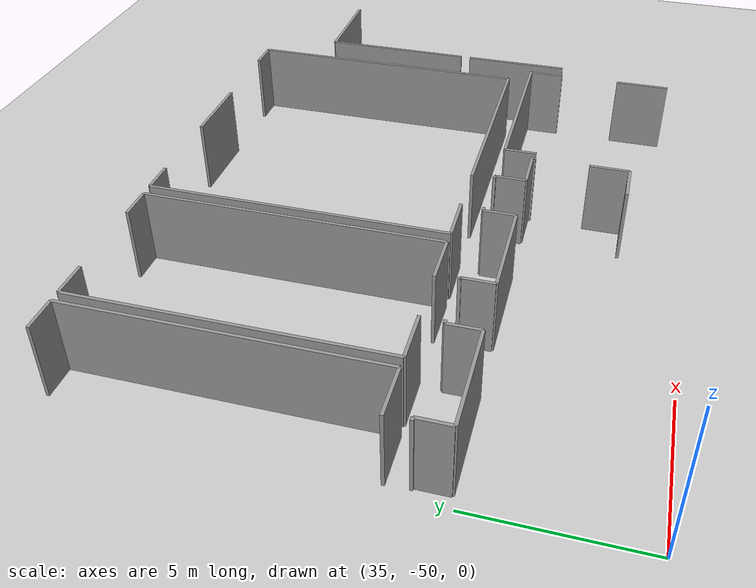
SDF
<sdf version="1.6">
 <world name="default">
  <model name="ground_plane">
   <static>1</static>
   <link name="link">
    <collision name="collision">
     <geometry><plane><normal>0 0 1</normal><size>100 100</size></plane></geometry>
     <surface><friction><ode><mu>100</mu><mu2>50</mu2></ode></friction></surface>
    </collision>
    <visual name="visual">
     <cast_shadows>0</cast_shadows>
     <geometry><plane><normal>0 0 1</normal><size>100 100</size></plane></geometry>
     <material>
      <script><uri>file://media/materials/scripts/gazebo.material</uri><name>Gazebo/Grey</name></script>
     </material>
    </visual>
   </link>
  </model>
  <model name="0510045925_40">
   <static>1</static>
   <link name="Wall_1606">
    <collision name="Wall_1606_Collision">
     <geometry><box><size>0.109134285932 0.1 2.5</size></box></geometry>
     <pose>0.0545671429659 0 1.25 0 0 0</pose>
    </collision>
    <visual name="Wall_1606_Visual">
     <pose>0.0545671429659 0 1.25 0 0 0</pose>
     <geometry><box><size>0.109134285932 0.1 2.5</size></box></geometry>
     <material>
      <script><uri>file://media/materials/scripts/gazebo.material</uri><name>Gazebo/Grey</name></script>
      <ambient>1 1 1 1</ambient>
     </material>
    </visual>
    <pose>169.266059237 -144.934823989 0 0 0 0.0</pose>
   </link>
   <link name="Wall_1607">
    <collision name="Wall_1607_Collision">
     <geometry><box><size>1.01367985584 0.1 2.5</size></box></geometry>
     <pose>0.506839927921 0 1.25 0 0 0</pose>
    </collision>
    <visual name="Wall_1607_Visual">
     <pose>0.506839927921 0 1.25 0 0 0</pose>
     <geometry><box><size>1.01367985584 0.1 2.5</size></box></geometry>
     <material>
      <script><uri>file://media/materials/scripts/gazebo.material</uri><name>Gazebo/Grey</name></script>
      <ambient>1 1 1 1</ambient>
     </material>
    </visual>
    <pose>169.375193523 -144.934823989 0 0 0 -1.57079632679</pose>
   </link>
   <link name="Wall_1608">
    <collision name="Wall_1608_Collision">
     <geometry><box><size>3.29712443847 0.1 2.5</size></box></geometry>
     <pose>1.64856221923 0 1.25 0 0 0</pose>
    </collision>
    <visual name="Wall_1608_Visual">
     <pose>1.64856221923 0 1.25 0 0 0</pose>
     <geometry><box><size>3.29712443847 0.1 2.5</size></box></geometry>
     <material>
      <script><uri>file://media/materials/scripts/gazebo.material</uri><name>Gazebo/Grey</name></script>
      <ambient>1 1 1 1</ambient>
     </material>
    </visual>
    <pose>169.375193523 -145.948503845 0 0 0 0.0</pose>
   </link>
   <link name="Wall_1609">
    <collision name="Wall_1609_Collision">
     <geometry><box><size>1.02230907845 0.1 2.5</size></box></geometry>
     <pose>0.511154539225 0 1.25 0 0 0</pose>
    </collision>
    <visual name="Wall_1609_Visual">
     <pose>0.511154539225 0 1.25 0 0 0</pose>
     <geometry><box><size>1.02230907845 0.1 2.5</size></box></geometry>
     <material>
      <script><uri>file://media/materials/scripts/gazebo.material</uri><name>Gazebo/Grey</name></script>
      <ambient>1 1 1 1</ambient>
     </material>
    </visual>
    <pose>172.672317961 -145.948503845 0 0 0 1.57079632679</pose>
   </link>
   <link name="Wall_1610">
    <collision name="Wall_1610_Collision">
     <geometry><box><size>0.125377528489 0.1 2.5</size></box></geometry>
     <pose>0.0626887642446 0 1.25 0 0 0</pose>
    </collision>
    <visual name="Wall_1610_Visual">
     <pose>0.0626887642446 0 1.25 0 0 0</pose>
     <geometry><box><size>0.125377528489 0.1 2.5</size></box></geometry>
     <material>
      <script><uri>file://media/materials/scripts/gazebo.material</uri><name>Gazebo/Grey</name></script>
      <ambient>1 1 1 1</ambient>
     </material>
    </visual>
    <pose>172.672317961 -144.926194767 0 0 0 0.0</pose>
   </link>
   <link name="Wall_1611">
    <collision name="Wall_1611_Collision">
     <geometry><box><size>0.0926372427096 0.1 2.5</size></box></geometry>
     <pose>0.0463186213548 0 1.25 0 0 0</pose>
    </collision>
    <visual name="Wall_1611_Visual">
     <pose>0.0463186213548 0 1.25 0 0 0</pose>
     <geometry><box><size>0.0926372427096 0.1 2.5</size></box></geometry>
     <material>
      <script><uri>file://media/materials/scripts/gazebo.material</uri><name>Gazebo/Grey</name></script>
      <ambient>1 1 1 1</ambient>
     </material>
    </visual>
    <pose>174.482678105 -144.926194767 0 0 0 0.0</pose>
   </link>
   <link name="Wall_1612">
    <collision name="Wall_1612_Collision">
     <geometry><box><size>1.01367985584 0.1 2.5</size></box></geometry>
     <pose>0.506839927921 0 1.25 0 0 0</pose>
    </collision>
    <visual name="Wall_1612_Visual">
     <pose>0.506839927921 0 1.25 0 0 0</pose>
     <geometry><box><size>1.01367985584 0.1 2.5</size></box></geometry>
     <material>
      <script><uri>file://media/materials/scripts/gazebo.material</uri><name>Gazebo/Grey</name></script>
      <ambient>1 1 1 1</ambient>
     </material>
    </visual>
    <pose>174.575315347 -144.926194767 0 0 0 -1.57079632679</pose>
   </link>
   <link name="Wall_1613">
    <collision name="Wall_1613_Collision">
     <geometry><box><size>3.27859698992 0.1 2.5</size></box></geometry>
     <pose>1.63929849496 0 1.25 0 0 0</pose>
    </collision>
    <visual name="Wall_1613_Visual">
     <pose>1.63929849496 0 1.25 0 0 0</pose>
     <geometry><box><size>3.27859698992 0.1 2.5</size></box></geometry>
     <material>
      <script><uri>file://media/materials/scripts/gazebo.material</uri><name>Gazebo/Grey</name></script>
      <ambient>1 1 1 1</ambient>
     </material>
    </visual>
    <pose>174.575315347 -145.939874622 0 0 0 0.0</pose>
   </link>
   <link name="Wall_1614">
    <collision name="Wall_1614_Collision">
     <geometry><box><size>1.0053044339 0.1 2.5</size></box></geometry>
     <pose>0.502652216949 0 1.25 0 0 0</pose>
    </collision>
    <visual name="Wall_1614_Visual">
     <pose>0.502652216949 0 1.25 0 0 0</pose>
     <geometry><box><size>1.0053044339 0.1 2.5</size></box></geometry>
     <material>
      <script><uri>file://media/materials/scripts/gazebo.material</uri><name>Gazebo/Grey</name></script>
      <ambient>1 1 1 1</ambient>
     </material>
    </visual>
    <pose>177.853912337 -145.939874622 0 0 0 1.57079632679</pose>
   </link>
   <link name="Wall_1615">
    <collision name="Wall_1615_Collision">
     <geometry><box><size>0.158371614934 0.1 2.5</size></box></geometry>
     <pose>0.0791858074668 0 1.25 0 0 0</pose>
    </collision>
    <visual name="Wall_1615_Visual">
     <pose>0.0791858074668 0 1.25 0 0 0</pose>
     <geometry><box><size>0.158371614934 0.1 2.5</size></box></geometry>
     <material>
      <script><uri>file://media/materials/scripts/gazebo.material</uri><name>Gazebo/Grey</name></script>
      <ambient>1 1 1 1</ambient>
     </material>
    </visual>
    <pose>177.853912337 -144.934570189 0 0 0 0.0</pose>
   </link>
   <link name="Wall_1616">
    <collision name="Wall_1616_Collision">
     <geometry><box><size>0.109134285932 0.1 2.5</size></box></geometry>
     <pose>0.0545671429659 0 1.25 0 0 0</pose>
    </collision>
    <visual name="Wall_1616_Visual">
     <pose>0.0545671429659 0 1.25 0 0 0</pose>
     <geometry><box><size>0.109134285932 0.1 2.5</size></box></geometry>
     <material>
      <script><uri>file://media/materials/scripts/gazebo.material</uri><name>Gazebo/Grey</name></script>
      <ambient>1 1 1 1</ambient>
     </material>
    </visual>
    <pose>179.692444354 -144.934570189 0 0 0 0.0</pose>
   </link>
   <link name="Wall_1617">
    <collision name="Wall_1617_Collision">
     <geometry><box><size>0.992868201315 0.1 2.5</size></box></geometry>
     <pose>0.496434100657 0 1.25 0 0 0</pose>
    </collision>
    <visual name="Wall_1617_Visual">
     <pose>0.496434100657 0 1.25 0 0 0</pose>
     <geometry><box><size>0.992868201315 0.1 2.5</size></box></geometry>
     <material>
      <script><uri>file://media/materials/scripts/gazebo.material</uri><name>Gazebo/Grey</name></script>
      <ambient>1 1 1 1</ambient>
     </material>
    </visual>
    <pose>179.80157864 -144.934570189 0 0 0 -1.57079632679</pose>
   </link>
   <link name="Wall_1618">
    <collision name="Wall_1618_Collision">
     <geometry><box><size>1.36950838811 0.1 2.5</size></box></geometry>
     <pose>0.684754194056 0 1.25 0 0 0</pose>
    </collision>
    <visual name="Wall_1618_Visual">
     <pose>0.684754194056 0 1.25 0 0 0</pose>
     <geometry><box><size>1.36950838811 0.1 2.5</size></box></geometry>
     <material>
      <script><uri>file://media/materials/scripts/gazebo.material</uri><name>Gazebo/Grey</name></script>
      <ambient>1 1 1 1</ambient>
     </material>
    </visual>
    <pose>179.80157864 -145.92743839 0 0 0 0.0</pose>
   </link>
   <link name="Wall_1619">
    <collision name="Wall_1619_Collision">
     <geometry><box><size>0.11979391386 0.1 2.5</size></box></geometry>
     <pose>0.05989695693 0 1.25 0 0 0</pose>
    </collision>
    <visual name="Wall_1619_Visual">
     <pose>0.05989695693 0 1.25 0 0 0</pose>
     <geometry><box><size>0.11979391386 0.1 2.5</size></box></geometry>
     <material>
      <script><uri>file://media/materials/scripts/gazebo.material</uri><name>Gazebo/Grey</name></script>
      <ambient>1 1 1 1</ambient>
     </material>
    </visual>
    <pose>181.171087028 -145.92743839 0 0 0 -1.57079632679</pose>
   </link>
   <link name="Wall_1620">
    <collision name="Wall_1620_Collision">
     <geometry><box><size>1.28600796934 0.1 2.5</size></box></geometry>
     <pose>0.64300398467 0 1.25 0 0 0</pose>
    </collision>
    <visual name="Wall_1620_Visual">
     <pose>0.64300398467 0 1.25 0 0 0</pose>
     <geometry><box><size>1.28600796934 0.1 2.5</size></box></geometry>
     <material>
      <script><uri>file://media/materials/scripts/gazebo.material</uri><name>Gazebo/Grey</name></script>
      <ambient>1 1 1 1</ambient>
     </material>
    </visual>
    <pose>181.171087028 -147.780690845 0 0 0 -1.57079632679</pose>
   </link>
   <link name="Wall_1621">
    <collision name="Wall_1621_Collision">
     <geometry><box><size>1.35326514555 0.1 2.5</size></box></geometry>
     <pose>0.676632572777 0 1.25 0 0 0</pose>
    </collision>
    <visual name="Wall_1621_Visual">
     <pose>0.676632572777 0 1.25 0 0 0</pose>
     <geometry><box><size>1.35326514555 0.1 2.5</size></box></geometry>
     <material>
      <script><uri>file://media/materials/scripts/gazebo.material</uri><name>Gazebo/Grey</name></script>
      <ambient>1 1 1 1</ambient>
     </material>
    </visual>
    <pose>181.171087028 -149.066698815 0 0 0 3.14159265359</pose>
   </link>
   <link name="Wall_1686">
    <collision name="Wall_1686_Collision">
     <geometry><box><size>1.08677444735 0.1 2.5</size></box></geometry>
     <pose>0.543387223675 0 1.25 0 0 0</pose>
    </collision>
    <visual name="Wall_1686_Visual">
     <pose>0.543387223675 0 1.25 0 0 0</pose>
     <geometry><box><size>1.08677444735 0.1 2.5</size></box></geometry>
     <material>
      <script><uri>file://media/materials/scripts/gazebo.material</uri><name>Gazebo/Grey</name></script>
      <ambient>1 1 1 1</ambient>
     </material>
    </visual>
    <pose>169.76325474 -134.628232786 0 0 0 0.0</pose>
   </link>
   <link name="Wall_1687">
    <collision name="Wall_1687_Collision">
     <geometry><box><size>9.5944265374 0.1 2.5</size></box></geometry>
     <pose>4.7972132687 0 1.25 0 0 0</pose>
    </collision>
    <visual name="Wall_1687_Visual">
     <pose>4.7972132687 0 1.25 0 0 0</pose>
     <geometry><box><size>9.5944265374 0.1 2.5</size></box></geometry>
     <material>
      <script><uri>file://media/materials/scripts/gazebo.material</uri><name>Gazebo/Grey</name></script>
      <ambient>1 1 1 1</ambient>
     </material>
    </visual>
    <pose>170.850029187 -134.628232786 0 0 0 -1.57079632679</pose>
   </link>
   <link name="Wall_1688">
    <collision name="Wall_1688_Collision">
     <geometry><box><size>1.61239562448 0.1 2.5</size></box></geometry>
     <pose>0.806197812238 0 1.25 0 0 0</pose>
    </collision>
    <visual name="Wall_1688_Visual">
     <pose>0.806197812238 0 1.25 0 0 0</pose>
     <geometry><box><size>1.61239562448 0.1 2.5</size></box></geometry>
     <material>
      <script><uri>file://media/materials/scripts/gazebo.material</uri><name>Gazebo/Grey</name></script>
      <ambient>1 1 1 1</ambient>
     </material>
    </visual>
    <pose>170.850029187 -144.222659323 0 0 0 3.14159265359</pose>
   </link>
   <link name="Wall_1690">
    <collision name="Wall_1690_Collision">
     <geometry><box><size>9.61295398594 0.1 2.5</size></box></geometry>
     <pose>4.80647699297 0 1.25 0 0 0</pose>
    </collision>
    <visual name="Wall_1690_Visual">
     <pose>4.80647699297 0 1.25 0 0 0</pose>
     <geometry><box><size>9.61295398594 0.1 2.5</size></box></geometry>
     <material>
      <script><uri>file://media/materials/scripts/gazebo.material</uri><name>Gazebo/Grey</name></script>
      <ambient>1 1 1 1</ambient>
     </material>
    </visual>
    <pose>171.212202736 -144.234080353 0 0 0 1.57079632679</pose>
   </link>
   <link name="Wall_1691">
    <collision name="Wall_1691_Collision">
     <geometry><box><size>1.11773812847 0.1 2.5</size></box></geometry>
     <pose>0.558869064237 0 1.25 0 0 0</pose>
    </collision>
    <visual name="Wall_1691_Visual">
     <pose>0.558869064237 0 1.25 0 0 0</pose>
     <geometry><box><size>1.11773812847 0.1 2.5</size></box></geometry>
     <material>
      <script><uri>file://media/materials/scripts/gazebo.material</uri><name>Gazebo/Grey</name></script>
      <ambient>1 1 1 1</ambient>
     </material>
    </visual>
    <pose>171.212202736 -134.621126367 0 0 0 0.0</pose>
   </link>
   <link name="Wall_1692">
    <collision name="Wall_1692_Collision">
     <geometry><box><size>1.05784117154 0.1 2.5</size></box></geometry>
     <pose>0.528920585772 0 1.25 0 0 0</pose>
    </collision>
    <visual name="Wall_1692_Visual">
     <pose>0.528920585772 0 1.25 0 0 0</pose>
     <geometry><box><size>1.05784117154 0.1 2.5</size></box></geometry>
     <material>
      <script><uri>file://media/materials/scripts/gazebo.material</uri><name>Gazebo/Grey</name></script>
      <ambient>1 1 1 1</ambient>
     </material>
    </visual>
    <pose>174.991802239 -134.621126367 0 0 0 0.0</pose>
   </link>
   <link name="Wall_1693">
    <collision name="Wall_1693_Collision">
     <geometry><box><size>9.60610136799 0.1 2.5</size></box></geometry>
     <pose>4.80305068399 0 1.25 0 0 0</pose>
    </collision>
    <visual name="Wall_1693_Visual">
     <pose>4.80305068399 0 1.25 0 0 0</pose>
     <geometry><box><size>9.60610136799 0.1 2.5</size></box></geometry>
     <material>
      <script><uri>file://media/materials/scripts/gazebo.material</uri><name>Gazebo/Grey</name></script>
      <ambient>1 1 1 1</ambient>
     </material>
    </visual>
    <pose>176.04964341 -134.621126367 0 0 0 -1.57079632679</pose>
   </link>
   <link name="Wall_1694">
    <collision name="Wall_1694_Collision">
     <geometry><box><size>1.60325880054 0.1 2.5</size></box></geometry>
     <pose>0.801629400269 0 1.25 0 0 0</pose>
    </collision>
    <visual name="Wall_1694_Visual">
     <pose>0.801629400269 0 1.25 0 0 0</pose>
     <geometry><box><size>1.60325880054 0.1 2.5</size></box></geometry>
     <material>
      <script><uri>file://media/materials/scripts/gazebo.material</uri><name>Gazebo/Grey</name></script>
      <ambient>1 1 1 1</ambient>
     </material>
    </visual>
    <pose>176.04964341 -144.227227735 0 0 0 3.14159265359</pose>
   </link>
   <link name="Wall_1695">
    <collision name="Wall_1695_Collision">
     <geometry><box><size>1.57383284195 0.1 2.5</size></box></geometry>
     <pose>0.786916420974 0 1.25 0 0 0</pose>
    </collision>
    <visual name="Wall_1695_Visual">
     <pose>0.786916420974 0 1.25 0 0 0</pose>
     <geometry><box><size>1.57383284195 0.1 2.5</size></box></geometry>
     <material>
      <script><uri>file://media/materials/scripts/gazebo.material</uri><name>Gazebo/Grey</name></script>
      <ambient>1 1 1 1</ambient>
     </material>
    </visual>
    <pose>172.786020659 -144.227227735 0 0 0 -3.13723854468</pose>
   </link>
   <link name="Wall_1696">
    <collision name="Wall_1696_Collision">
     <geometry><box><size>9.63224283648 0.1 2.5</size></box></geometry>
     <pose>4.81612141824 0 1.25 0 0 0</pose>
    </collision>
    <visual name="Wall_1696_Visual">
     <pose>4.81612141824 0 1.25 0 0 0</pose>
     <geometry><box><size>9.63224283648 0.1 2.5</size></box></geometry>
     <material>
      <script><uri>file://media/materials/scripts/gazebo.material</uri><name>Gazebo/Grey</name></script>
      <ambient>1 1 1 1</ambient>
     </material>
    </visual>
    <pose>176.471967717 -144.246262785 0 0 0 1.57079632679</pose>
   </link>
   <link name="Wall_1697">
    <collision name="Wall_1697_Collision">
     <geometry><box><size>1.05555696556 0.1 2.5</size></box></geometry>
     <pose>0.52777848278 0 1.25 0 0 0</pose>
    </collision>
    <visual name="Wall_1697_Visual">
     <pose>0.52777848278 0 1.25 0 0 0</pose>
     <geometry><box><size>1.05555696556 0.1 2.5</size></box></geometry>
     <material>
      <script><uri>file://media/materials/scripts/gazebo.material</uri><name>Gazebo/Grey</name></script>
      <ambient>1 1 1 1</ambient>
     </material>
    </visual>
    <pose>176.471967717 -134.614019949 0 0 0 0.0</pose>
   </link>
   <link name="Wall_1698">
    <collision name="Wall_1698_Collision">
     <geometry><box><size>2.55120428416 0.1 2.5</size></box></geometry>
     <pose>1.27560214208 0 1.25 0 0 0</pose>
    </collision>
    <visual name="Wall_1698_Visual">
     <pose>1.27560214208 0 1.25 0 0 0</pose>
     <geometry><box><size>2.55120428416 0.1 2.5</size></box></geometry>
     <material>
      <script><uri>file://media/materials/scripts/gazebo.material</uri><name>Gazebo/Grey</name></script>
      <ambient>1 1 1 1</ambient>
     </material>
    </visual>
    <pose>180.22897896 -134.614019949 0 0 0 0.0</pose>
   </link>
   <link name="Wall_1699">
    <collision name="Wall_1699_Collision">
     <geometry><box><size>0.997944214614 0.1 2.5</size></box></geometry>
     <pose>0.498972107307 0 1.25 0 0 0</pose>
    </collision>
    <visual name="Wall_1699_Visual">
     <pose>0.498972107307 0 1.25 0 0 0</pose>
     <geometry><box><size>0.997944214614 0.1 2.5</size></box></geometry>
     <material>
      <script><uri>file://media/materials/scripts/gazebo.material</uri><name>Gazebo/Grey</name></script>
      <ambient>1 1 1 1</ambient>
     </material>
    </visual>
    <pose>185.46945509 -134.614019949 0 0 0 0.0</pose>
   </link>
   <link name="Wall_1700">
    <collision name="Wall_1700_Collision">
     <geometry><box><size>9.61143118195 0.1 2.5</size></box></geometry>
     <pose>4.80571559097 0 1.25 0 0 0</pose>
    </collision>
    <visual name="Wall_1700_Visual">
     <pose>4.80571559097 0 1.25 0 0 0</pose>
     <geometry><box><size>9.61143118195 0.1 2.5</size></box></geometry>
     <material>
      <script><uri>file://media/materials/scripts/gazebo.material</uri><name>Gazebo/Grey</name></script>
      <ambient>1 1 1 1</ambient>
     </material>
    </visual>
    <pose>186.467399305 -134.614019949 0 0 0 -1.57079632679</pose>
   </link>
   <link name="Wall_1701">
    <collision name="Wall_1701_Collision">
     <geometry><box><size>6.82343087739 0.1 2.5</size></box></geometry>
     <pose>3.41171543869 0 1.25 0 0 0</pose>
    </collision>
    <visual name="Wall_1701_Visual">
     <pose>3.41171543869 0 1.25 0 0 0</pose>
     <geometry><box><size>6.82343087739 0.1 2.5</size></box></geometry>
     <material>
      <script><uri>file://media/materials/scripts/gazebo.material</uri><name>Gazebo/Grey</name></script>
      <ambient>1 1 1 1</ambient>
     </material>
    </visual>
    <pose>186.467399305 -144.225451131 0 0 0 3.14159265359</pose>
   </link>
   <link name="Wall_1702">
    <collision name="Wall_1702_Collision">
     <geometry><box><size>1.53766527327 0.1 2.5</size></box></geometry>
     <pose>0.768832636636 0 1.25 0 0 0</pose>
    </collision>
    <visual name="Wall_1702_Visual">
     <pose>0.768832636636 0 1.25 0 0 0</pose>
     <geometry><box><size>1.53766527327 0.1 2.5</size></box></geometry>
     <material>
      <script><uri>file://media/materials/scripts/gazebo.material</uri><name>Gazebo/Grey</name></script>
      <ambient>1 1 1 1</ambient>
     </material>
    </visual>
    <pose>178.009492145 -144.225451131 0 0 0 -3.12805765977</pose>
   </link>
   <link name="Wall_1774">
    <collision name="Wall_1774_Collision">
     <geometry><box><size>1.03855232101 0.1 2.5</size></box></geometry>
     <pose>0.519276160504 0 1.25 0 0 0</pose>
    </collision>
    <visual name="Wall_1774_Visual">
     <pose>0.519276160504 0 1.25 0 0 0</pose>
     <geometry><box><size>1.03855232101 0.1 2.5</size></box></geometry>
     <material>
      <script><uri>file://media/materials/scripts/gazebo.material</uri><name>Gazebo/Grey</name></script>
      <ambient>1 1 1 1</ambient>
     </material>
    </visual>
    <pose>181.475394026 -146.009923606 0 0 0 1.57079632679</pose>
   </link>
   <link name="Wall_1775">
    <collision name="Wall_1775_Collision">
     <geometry><box><size>5.73817923403 0.1 2.5</size></box></geometry>
     <pose>2.86908961701 0 1.25 0 0 0</pose>
    </collision>
    <visual name="Wall_1775_Visual">
     <pose>2.86908961701 0 1.25 0 0 0</pose>
     <geometry><box><size>5.73817923403 0.1 2.5</size></box></geometry>
     <material>
      <script><uri>file://media/materials/scripts/gazebo.material</uri><name>Gazebo/Grey</name></script>
      <ambient>1 1 1 1</ambient>
     </material>
    </visual>
    <pose>181.475394026 -144.971371285 0 0 0 0.0</pose>
   </link>
   <link name="Wall_1776">
    <collision name="Wall_1776_Collision">
     <geometry><box><size>1.18448770336 0.1 2.5</size></box></geometry>
     <pose>0.592243851679 0 1.25 0 0 0</pose>
    </collision>
    <visual name="Wall_1776_Visual">
     <pose>0.592243851679 0 1.25 0 0 0</pose>
     <geometry><box><size>1.18448770336 0.1 2.5</size></box></geometry>
     <material>
      <script><uri>file://media/materials/scripts/gazebo.material</uri><name>Gazebo/Grey</name></script>
      <ambient>1 1 1 1</ambient>
     </material>
    </visual>
    <pose>187.21357326 -144.971371285 0 0 0 -1.57079632679</pose>
   </link>
   <link name="Wall_1777">
    <collision name="Wall_1777_Collision">
     <geometry><box><size>1.82964899368 0.1 2.5</size></box></geometry>
     <pose>0.91482449684 0 1.25 0 0 0</pose>
    </collision>
    <visual name="Wall_1777_Visual">
     <pose>0.91482449684 0 1.25 0 0 0</pose>
     <geometry><box><size>1.82964899368 0.1 2.5</size></box></geometry>
     <material>
      <script><uri>file://media/materials/scripts/gazebo.material</uri><name>Gazebo/Grey</name></script>
      <ambient>1 1 1 1</ambient>
     </material>
    </visual>
    <pose>187.21357326 -148.184995305 0 0 0 -1.57079632679</pose>
   </link>
   <link name="Wall_1790">
    <collision name="Wall_1790_Collision">
     <geometry><box><size>5.1765255549 0.1 2.5</size></box></geometry>
     <pose>2.58826277745 0 1.25 0 0 0</pose>
    </collision>
    <visual name="Wall_1790_Visual">
     <pose>2.58826277745 0 1.25 0 0 0</pose>
     <geometry><box><size>5.1765255549 0.1 2.5</size></box></geometry>
     <material>
      <script><uri>file://media/materials/scripts/gazebo.material</uri><name>Gazebo/Grey</name></script>
      <ambient>1 1 1 1</ambient>
     </material>
    </visual>
    <pose>187.824217659 -142.139209665 0 0 0 1.56912933481</pose>
   </link>
   <link name="Wall_1791">
    <collision name="Wall_1791_Collision">
     <geometry><box><size>3.27199817264 0.1 2.5</size></box></geometry>
     <pose>1.63599908632 0 1.25 0 0 0</pose>
    </collision>
    <visual name="Wall_1791_Visual">
     <pose>1.63599908632 0 1.25 0 0 0</pose>
     <geometry><box><size>3.27199817264 0.1 2.5</size></box></geometry>
     <material>
      <script><uri>file://media/materials/scripts/gazebo.material</uri><name>Gazebo/Grey</name></script>
      <ambient>1 1 1 1</ambient>
     </material>
    </visual>
    <pose>187.832846882 -136.962691302 0 0 0 0.0</pose>
   </link>
   <link name="Wall_1819">
    <collision name="Wall_1819_Collision">
     <geometry><box><size>3.60168523642 0.1 2.5</size></box></geometry>
     <pose>1.80084261821 0 1.25 0 0 0</pose>
    </collision>
    <visual name="Wall_1819_Visual">
     <pose>1.80084261821 0 1.25 0 0 0</pose>
     <geometry><box><size>3.60168523642 0.1 2.5</size></box></geometry>
     <material>
      <script><uri>file://media/materials/scripts/gazebo.material</uri><name>Gazebo/Grey</name></script>
      <ambient>1 1 1 1</ambient>
     </material>
    </visual>
    <pose>187.816349839 -146.082002995 0 0 0 1.57079632679</pose>
   </link>
   <pose>-133.95 101.083118449 0 0 0 0</pose>
  </model>
 </world>
</sdf>
